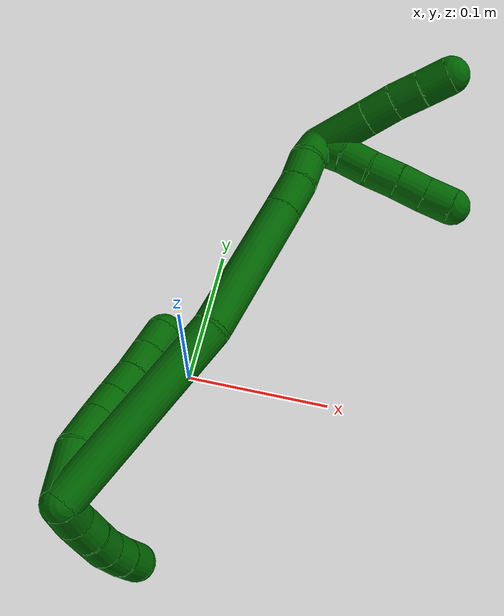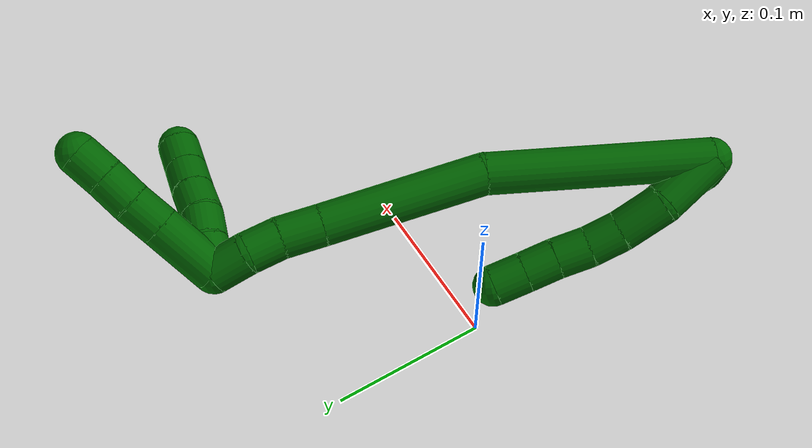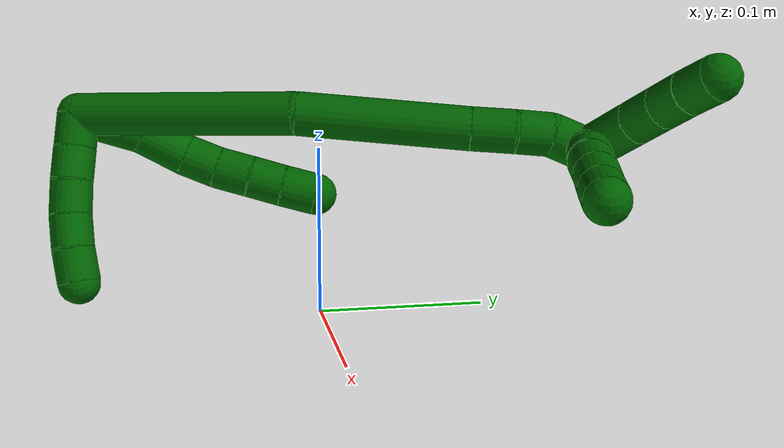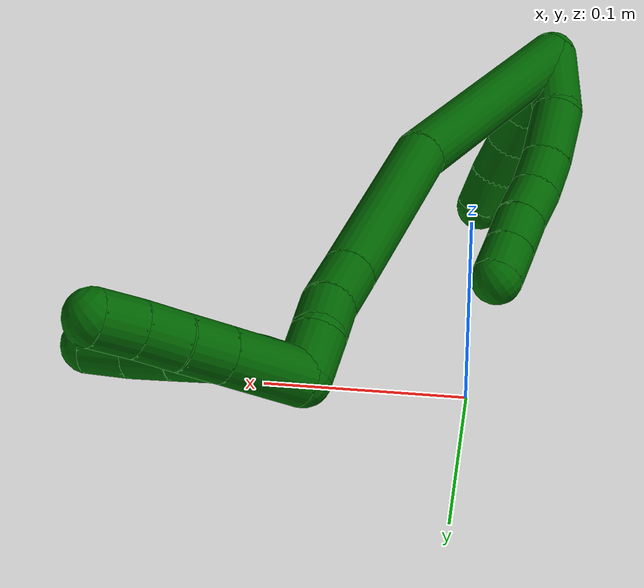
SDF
<sdf version="1.7">
 <world name="default">
  <model name="6">
   <static>0</static>
   <link name="6">
    <collision name="collision-cylinder-e_1_2_8">
     <pose>-0.00173 0.017191 -0.008407 -2.02565 -0.090167 0.144316</pose>
     <geometry><cylinder><radius>0.0125</radius><length>0.03843</length></cylinder></geometry>
     <surface>
      <friction><ode><mu>1.16</mu><mu2>1.16</mu2><slip1>0</slip1><slip2>0</slip2></ode></friction>
      <contact><ode><kp>1e+06</kp><kd>1</kd><max_vel>0</max_vel><min_depth>0.001</min_depth></ode></contact>
     </surface>
    </collision>
    <visual name="visual-cylinder-e_1_2_8">
     <pose>-0.00173 0.017191 -0.008407 -2.02565 -0.090167 0.144316</pose>
     <geometry><cylinder><radius>0.0125</radius><length>0.03843</length></cylinder></geometry>
     <material><ambient>0 0.392157 0.003922 1</ambient></material>
    </visual>
    <collision name="collision-cylinder-e_2_8_9">
     <pose>-0.000395 0.047733 -0.022591 -1.97915 0.207699 -0.314693</pose>
     <geometry><cylinder><radius>0.0125</radius><length>0.029731</length></cylinder></geometry>
     <surface>
      <friction><ode><mu>1.16</mu><mu2>1.16</mu2><slip1>0</slip1><slip2>0</slip2></ode></friction>
      <contact><ode><kp>1e+06</kp><kd>1</kd><max_vel>0</max_vel><min_depth>0.001</min_depth></ode></contact>
     </surface>
    </collision>
    <visual name="visual-cylinder-e_2_8_9">
     <pose>-0.000395 0.047733 -0.022591 -1.97915 0.207699 -0.314693</pose>
     <geometry><cylinder><radius>0.0125</radius><length>0.029731</length></cylinder></geometry>
     <material><ambient>0 0.392157 0.003922 1</ambient></material>
    </visual>
    <collision name="collision-cylinder-e_3_9_10">
     <pose>0.004696 0.070839 -0.031075 -1.84155 0.197491 -0.259162</pose>
     <geometry><cylinder><radius>0.0125</radius><length>0.020651</length></cylinder></geometry>
     <surface>
      <friction><ode><mu>1.16</mu><mu2>1.16</mu2><slip1>0</slip1><slip2>0</slip2></ode></friction>
      <contact><ode><kp>1e+06</kp><kd>1</kd><max_vel>0</max_vel><min_depth>0.001</min_depth></ode></contact>
     </surface>
    </collision>
    <visual name="visual-cylinder-e_3_9_10">
     <pose>0.004696 0.070839 -0.031075 -1.84155 0.197491 -0.259162</pose>
     <geometry><cylinder><radius>0.0125</radius><length>0.020651</length></cylinder></geometry>
     <material><ambient>0 0.392157 0.003922 1</ambient></material>
    </visual>
    <collision name="collision-cylinder-e_4_10_11">
     <pose>0.008503 0.090727 -0.035064 -1.69655 0.172621 -0.19568</pose>
     <geometry><cylinder><radius>0.0125</radius><length>0.020734</length></cylinder></geometry>
     <surface>
      <friction><ode><mu>1.16</mu><mu2>1.16</mu2><slip1>0</slip1><slip2>0</slip2></ode></friction>
      <contact><ode><kp>1e+06</kp><kd>1</kd><max_vel>0</max_vel><min_depth>0.001</min_depth></ode></contact>
     </surface>
    </collision>
    <visual name="visual-cylinder-e_4_10_11">
     <pose>0.008503 0.090727 -0.035064 -1.69655 0.172621 -0.19568</pose>
     <geometry><cylinder><radius>0.0125</radius><length>0.020734</length></cylinder></geometry>
     <material><ambient>0 0.392157 0.003922 1</ambient></material>
    </visual>
    <collision name="collision-cylinder-e_5_11_12">
     <pose>0.011626 0.110636 -0.038203 -1.75859 0.134019 -0.161775</pose>
     <geometry><cylinder><radius>0.0125</radius><length>0.020084</length></cylinder></geometry>
     <surface>
      <friction><ode><mu>1.16</mu><mu2>1.16</mu2><slip1>0</slip1><slip2>0</slip2></ode></friction>
      <contact><ode><kp>1e+06</kp><kd>1</kd><max_vel>0</max_vel><min_depth>0.001</min_depth></ode></contact>
     </surface>
    </collision>
    <visual name="visual-cylinder-e_5_11_12">
     <pose>0.011626 0.110636 -0.038203 -1.75859 0.134019 -0.161775</pose>
     <geometry><cylinder><radius>0.0125</radius><length>0.020084</length></cylinder></geometry>
     <material><ambient>0 0.392157 0.003922 1</ambient></material>
    </visual>
    <collision name="collision-cylinder-e_6_12_6">
     <pose>0.014207 0.130384 -0.041727 -1.73633 0.121992 -0.143993</pose>
     <geometry><cylinder><radius>0.0125</radius><length>0.020369</length></cylinder></geometry>
     <surface>
      <friction><ode><mu>1.16</mu><mu2>1.16</mu2><slip1>0</slip1><slip2>0</slip2></ode></friction>
      <contact><ode><kp>1e+06</kp><kd>1</kd><max_vel>0</max_vel><min_depth>0.001</min_depth></ode></contact>
     </surface>
    </collision>
    <visual name="visual-cylinder-e_6_12_6">
     <pose>0.014207 0.130384 -0.041727 -1.73633 0.121992 -0.143993</pose>
     <geometry><cylinder><radius>0.0125</radius><length>0.020369</length></cylinder></geometry>
     <material><ambient>0 0.392157 0.003922 1</ambient></material>
    </visual>
    <collision name="collision-cylinder-e_1_2_13">
     <pose>0.008077 -0.000397 -0.005883 3.07419 0.940161 3.00908</pose>
     <geometry><cylinder><radius>0.0125</radius><length>0.02</length></cylinder></geometry>
     <surface>
      <friction><ode><mu>1.16</mu><mu2>1.16</mu2><slip1>0</slip1><slip2>0</slip2></ode></friction>
      <contact><ode><kp>1e+06</kp><kd>1</kd><max_vel>0</max_vel><min_depth>0.001</min_depth></ode></contact>
     </surface>
    </collision>
    <visual name="visual-cylinder-e_1_2_13">
     <pose>0.008077 -0.000397 -0.005883 3.07419 0.940161 3.00908</pose>
     <geometry><cylinder><radius>0.0125</radius><length>0.02</length></cylinder></geometry>
     <material><ambient>0 0.392157 0.003922 1</ambient></material>
    </visual>
    <collision name="collision-cylinder-e_2_13_14">
     <pose>0.024998 -0.000702 -0.016431 -3.1219 1.08536 -3.10893</pose>
     <geometry><cylinder><radius>0.0125</radius><length>0.02</length></cylinder></geometry>
     <surface>
      <friction><ode><mu>1.16</mu><mu2>1.16</mu2><slip1>0</slip1><slip2>0</slip2></ode></friction>
      <contact><ode><kp>1e+06</kp><kd>1</kd><max_vel>0</max_vel><min_depth>0.001</min_depth></ode></contact>
     </surface>
    </collision>
    <visual name="visual-cylinder-e_2_13_14">
     <pose>0.024998 -0.000702 -0.016431 -3.1219 1.08536 -3.10893</pose>
     <geometry><cylinder><radius>0.0125</radius><length>0.02</length></cylinder></geometry>
     <material><ambient>0 0.392157 0.003922 1</ambient></material>
    </visual>
    <collision name="collision-cylinder-e_3_14_15">
     <pose>0.042167 -0.000138 -0.026617 -3.05614 0.983512 -2.9823</pose>
     <geometry><cylinder><radius>0.0125</radius><length>0.02</length></cylinder></geometry>
     <surface>
      <friction><ode><mu>1.16</mu><mu2>1.16</mu2><slip1>0</slip1><slip2>0</slip2></ode></friction>
      <contact><ode><kp>1e+06</kp><kd>1</kd><max_vel>0</max_vel><min_depth>0.001</min_depth></ode></contact>
     </surface>
    </collision>
    <visual name="visual-cylinder-e_3_14_15">
     <pose>0.042167 -0.000138 -0.026617 -3.05614 0.983512 -2.9823</pose>
     <geometry><cylinder><radius>0.0125</radius><length>0.02</length></cylinder></geometry>
     <material><ambient>0 0.392157 0.003922 1</ambient></material>
    </visual>
    <collision name="collision-cylinder-e_4_15_16">
     <pose>0.059009 0.002043 -0.037091 -2.80968 1.01938 -2.5593</pose>
     <geometry><cylinder><radius>0.0125</radius><length>0.02</length></cylinder></geometry>
     <surface>
      <friction><ode><mu>1.16</mu><mu2>1.16</mu2><slip1>0</slip1><slip2>0</slip2></ode></friction>
      <contact><ode><kp>1e+06</kp><kd>1</kd><max_vel>0</max_vel><min_depth>0.001</min_depth></ode></contact>
     </surface>
    </collision>
    <visual name="visual-cylinder-e_4_15_16">
     <pose>0.059009 0.002043 -0.037091 -2.80968 1.01938 -2.5593</pose>
     <geometry><cylinder><radius>0.0125</radius><length>0.02</length></cylinder></geometry>
     <material><ambient>0 0.392157 0.003922 1</ambient></material>
    </visual>
    <collision name="collision-cylinder-e_5_16_5">
     <pose>0.075467 0.006225 -0.047597 -2.72223 0.917299 -2.32773</pose>
     <geometry><cylinder><radius>0.0125</radius><length>0.02</length></cylinder></geometry>
     <surface>
      <friction><ode><mu>1.16</mu><mu2>1.16</mu2><slip1>0</slip1><slip2>0</slip2></ode></friction>
      <contact><ode><kp>1e+06</kp><kd>1</kd><max_vel>0</max_vel><min_depth>0.001</min_depth></ode></contact>
     </surface>
    </collision>
    <visual name="visual-cylinder-e_5_16_5">
     <pose>0.075467 0.006225 -0.047597 -2.72223 0.917299 -2.32773</pose>
     <geometry><cylinder><radius>0.0125</radius><length>0.02</length></cylinder></geometry>
     <material><ambient>0 0.392157 0.003922 1</ambient></material>
    </visual>
    <collision name="collision-cylinder-e_1_2_17">
     <pose>0.007562 0.065737 0.012794 -1.37858 0.112432 -0.092691</pose>
     <geometry><cylinder><radius>0.0125</radius><length>0.134793</length></cylinder></geometry>
     <surface>
      <friction><ode><mu>1.16</mu><mu2>1.16</mu2><slip1>0</slip1><slip2>0</slip2></ode></friction>
      <contact><ode><kp>1e+06</kp><kd>1</kd><max_vel>0</max_vel><min_depth>0.001</min_depth></ode></contact>
     </surface>
    </collision>
    <visual name="visual-cylinder-e_1_2_17">
     <pose>0.007562 0.065737 0.012794 -1.37858 0.112432 -0.092691</pose>
     <geometry><cylinder><radius>0.0125</radius><length>0.134793</length></cylinder></geometry>
     <material><ambient>0 0.392157 0.003922 1</ambient></material>
    </visual>
    <collision name="collision-cylinder-e_2_17_18">
     <pose>0.016355 0.180411 0.024217 -1.5988 0.025168 -0.025883</pose>
     <geometry><cylinder><radius>0.0125</radius><length>0.097941</length></cylinder></geometry>
     <surface>
      <friction><ode><mu>1.16</mu><mu2>1.16</mu2><slip1>0</slip1><slip2>0</slip2></ode></friction>
      <contact><ode><kp>1e+06</kp><kd>1</kd><max_vel>0</max_vel><min_depth>0.001</min_depth></ode></contact>
     </surface>
    </collision>
    <visual name="visual-cylinder-e_2_17_18">
     <pose>0.016355 0.180411 0.024217 -1.5988 0.025168 -0.025883</pose>
     <geometry><cylinder><radius>0.0125</radius><length>0.097941</length></cylinder></geometry>
     <material><ambient>0 0.392157 0.003922 1</ambient></material>
    </visual>
    <collision name="collision-cylinder-e_3_18_19">
     <pose>0.017699 0.241767 0.02269 -1.58332 0.008981 -0.009094</pose>
     <geometry><cylinder><radius>0.0125</radius><length>0.024844</length></cylinder></geometry>
     <surface>
      <friction><ode><mu>1.16</mu><mu2>1.16</mu2><slip1>0</slip1><slip2>0</slip2></ode></friction>
      <contact><ode><kp>1e+06</kp><kd>1</kd><max_vel>0</max_vel><min_depth>0.001</min_depth></ode></contact>
     </surface>
    </collision>
    <visual name="visual-cylinder-e_3_18_19">
     <pose>0.017699 0.241767 0.02269 -1.58332 0.008981 -0.009094</pose>
     <geometry><cylinder><radius>0.0125</radius><length>0.024844</length></cylinder></geometry>
     <material><ambient>0 0.392157 0.003922 1</ambient></material>
    </visual>
    <collision name="collision-cylinder-e_4_19_20">
     <pose>0.016994 0.264203 0.021202 -1.70307 -0.080663 0.09209</pose>
     <geometry><cylinder><radius>0.0125</radius><length>0.020273</length></cylinder></geometry>
     <surface>
      <friction><ode><mu>1.16</mu><mu2>1.16</mu2><slip1>0</slip1><slip2>0</slip2></ode></friction>
      <contact><ode><kp>1e+06</kp><kd>1</kd><max_vel>0</max_vel><min_depth>0.001</min_depth></ode></contact>
     </surface>
    </collision>
    <visual name="visual-cylinder-e_4_19_20">
     <pose>0.016994 0.264203 0.021202 -1.70307 -0.080663 0.09209</pose>
     <geometry><cylinder><radius>0.0125</radius><length>0.020273</length></cylinder></geometry>
     <material><ambient>0 0.392157 0.003922 1</ambient></material>
    </visual>
    <collision name="collision-cylinder-e_5_20_1">
     <pose>0.018263 0.284568 0.016526 -1.88328 0.189479 -0.259649</pose>
     <geometry><cylinder><radius>0.0125</radius><length>0.022149</length></cylinder></geometry>
     <surface>
      <friction><ode><mu>1.16</mu><mu2>1.16</mu2><slip1>0</slip1><slip2>0</slip2></ode></friction>
      <contact><ode><kp>1e+06</kp><kd>1</kd><max_vel>0</max_vel><min_depth>0.001</min_depth></ode></contact>
     </surface>
    </collision>
    <visual name="visual-cylinder-e_5_20_1">
     <pose>0.018263 0.284568 0.016526 -1.88328 0.189479 -0.259649</pose>
     <geometry><cylinder><radius>0.0125</radius><length>0.022149</length></cylinder></geometry>
     <material><ambient>0 0.392157 0.003922 1</ambient></material>
    </visual>
    <collision name="collision-cylinder-e_1_1_21">
     <pose>0.027645 0.294463 0.020006 0.066486 0.817754 0.028817</pose>
     <geometry><cylinder><radius>0.0125</radius><length>0.02</length></cylinder></geometry>
     <surface>
      <friction><ode><mu>1.16</mu><mu2>1.16</mu2><slip1>0</slip1><slip2>0</slip2></ode></friction>
      <contact><ode><kp>1e+06</kp><kd>1</kd><max_vel>0</max_vel><min_depth>0.001</min_depth></ode></contact>
     </surface>
    </collision>
    <visual name="visual-cylinder-e_1_1_21">
     <pose>0.027645 0.294463 0.020006 0.066486 0.817754 0.028817</pose>
     <geometry><cylinder><radius>0.0125</radius><length>0.02</length></cylinder></geometry>
     <material><ambient>0 0.392157 0.003922 1</ambient></material>
    </visual>
    <collision name="collision-cylinder-e_2_21_22">
     <pose>0.043092 0.293115 0.032553 0.15498 0.9529 0.080104</pose>
     <geometry><cylinder><radius>0.0125</radius><length>0.02</length></cylinder></geometry>
     <surface>
      <friction><ode><mu>1.16</mu><mu2>1.16</mu2><slip1>0</slip1><slip2>0</slip2></ode></friction>
      <contact><ode><kp>1e+06</kp><kd>1</kd><max_vel>0</max_vel><min_depth>0.001</min_depth></ode></contact>
     </surface>
    </collision>
    <visual name="visual-cylinder-e_2_21_22">
     <pose>0.043092 0.293115 0.032553 0.15498 0.9529 0.080104</pose>
     <geometry><cylinder><radius>0.0125</radius><length>0.02</length></cylinder></geometry>
     <material><ambient>0 0.392157 0.003922 1</ambient></material>
    </visual>
    <collision name="collision-cylinder-e_3_22_23">
     <pose>0.059964 0.29279 0.043138 -0.116729 1.05941 -0.068399</pose>
     <geometry><cylinder><radius>0.0125</radius><length>0.02</length></cylinder></geometry>
     <surface>
      <friction><ode><mu>1.16</mu><mu2>1.16</mu2><slip1>0</slip1><slip2>0</slip2></ode></friction>
      <contact><ode><kp>1e+06</kp><kd>1</kd><max_vel>0</max_vel><min_depth>0.001</min_depth></ode></contact>
     </surface>
    </collision>
    <visual name="visual-cylinder-e_3_22_23">
     <pose>0.059964 0.29279 0.043138 -0.116729 1.05941 -0.068399</pose>
     <geometry><cylinder><radius>0.0125</radius><length>0.02</length></cylinder></geometry>
     <material><ambient>0 0.392157 0.003922 1</ambient></material>
    </visual>
    <collision name="collision-cylinder-e_4_23_24">
     <pose>0.077529 0.293491 0.052662 -0.028097 1.08539 -0.016946</pose>
     <geometry><cylinder><radius>0.0125</radius><length>0.02</length></cylinder></geometry>
     <surface>
      <friction><ode><mu>1.16</mu><mu2>1.16</mu2><slip1>0</slip1><slip2>0</slip2></ode></friction>
      <contact><ode><kp>1e+06</kp><kd>1</kd><max_vel>0</max_vel><min_depth>0.001</min_depth></ode></contact>
     </surface>
    </collision>
    <visual name="visual-cylinder-e_4_23_24">
     <pose>0.077529 0.293491 0.052662 -0.028097 1.08539 -0.016946</pose>
     <geometry><cylinder><radius>0.0125</radius><length>0.02</length></cylinder></geometry>
     <material><ambient>0 0.392157 0.003922 1</ambient></material>
    </visual>
    <collision name="collision-cylinder-e_5_24_4">
     <pose>0.094844 0.293776 0.06264 -0.028867 1.01029 -0.015964</pose>
     <geometry><cylinder><radius>0.0125</radius><length>0.02</length></cylinder></geometry>
     <surface>
      <friction><ode><mu>1.16</mu><mu2>1.16</mu2><slip1>0</slip1><slip2>0</slip2></ode></friction>
      <contact><ode><kp>1e+06</kp><kd>1</kd><max_vel>0</max_vel><min_depth>0.001</min_depth></ode></contact>
     </surface>
    </collision>
    <visual name="visual-cylinder-e_5_24_4">
     <pose>0.094844 0.293776 0.06264 -0.028867 1.01029 -0.015964</pose>
     <geometry><cylinder><radius>0.0125</radius><length>0.02</length></cylinder></geometry>
     <material><ambient>0 0.392157 0.003922 1</ambient></material>
    </visual>
    <collision name="collision-cylinder-e_1_1_25">
     <pose>0.024272 0.305576 0.029314 -0.583868 0.200163 -0.060336</pose>
     <geometry><cylinder><radius>0.0125</radius><length>0.039456</length></cylinder></geometry>
     <surface>
      <friction><ode><mu>1.16</mu><mu2>1.16</mu2><slip1>0</slip1><slip2>0</slip2></ode></friction>
      <contact><ode><kp>1e+06</kp><kd>1</kd><max_vel>0</max_vel><min_depth>0.001</min_depth></ode></contact>
     </surface>
    </collision>
    <visual name="visual-cylinder-e_1_1_25">
     <pose>0.024272 0.305576 0.029314 -0.583868 0.200163 -0.060336</pose>
     <geometry><cylinder><radius>0.0125</radius><length>0.039456</length></cylinder></geometry>
     <material><ambient>0 0.392157 0.003922 1</ambient></material>
    </visual>
    <collision name="collision-cylinder-e_2_25_26">
     <pose>0.030203 0.321847 0.053807 -0.591173 0.196894 -0.060132</pose>
     <geometry><cylinder><radius>0.0125</radius><length>0.020541</length></cylinder></geometry>
     <surface>
      <friction><ode><mu>1.16</mu><mu2>1.16</mu2><slip1>0</slip1><slip2>0</slip2></ode></friction>
      <contact><ode><kp>1e+06</kp><kd>1</kd><max_vel>0</max_vel><min_depth>0.001</min_depth></ode></contact>
     </surface>
    </collision>
    <visual name="visual-cylinder-e_2_25_26">
     <pose>0.030203 0.321847 0.053807 -0.591173 0.196894 -0.060132</pose>
     <geometry><cylinder><radius>0.0125</radius><length>0.020541</length></cylinder></geometry>
     <material><ambient>0 0.392157 0.003922 1</ambient></material>
    </visual>
    <collision name="collision-cylinder-e_3_26_27">
     <pose>0.034793 0.332403 0.070473 -0.536945 0.260971 -0.072176</pose>
     <geometry><cylinder><radius>0.0125</radius><length>0.020003</length></cylinder></geometry>
     <surface>
      <friction><ode><mu>1.16</mu><mu2>1.16</mu2><slip1>0</slip1><slip2>0</slip2></ode></friction>
      <contact><ode><kp>1e+06</kp><kd>1</kd><max_vel>0</max_vel><min_depth>0.001</min_depth></ode></contact>
     </surface>
    </collision>
    <visual name="visual-cylinder-e_3_26_27">
     <pose>0.034793 0.332403 0.070473 -0.536945 0.260971 -0.072176</pose>
     <geometry><cylinder><radius>0.0125</radius><length>0.020003</length></cylinder></geometry>
     <material><ambient>0 0.392157 0.003922 1</ambient></material>
    </visual>
    <collision name="collision-cylinder-e_4_27_3">
     <pose>0.039992 0.342655 0.086835 -0.582508 0.264994 -0.079865</pose>
     <geometry><cylinder><radius>0.0125</radius><length>0.02</length></cylinder></geometry>
     <surface>
      <friction><ode><mu>1.16</mu><mu2>1.16</mu2><slip1>0</slip1><slip2>0</slip2></ode></friction>
      <contact><ode><kp>1e+06</kp><kd>1</kd><max_vel>0</max_vel><min_depth>0.001</min_depth></ode></contact>
     </surface>
    </collision>
    <visual name="visual-cylinder-e_4_27_3">
     <pose>0.039992 0.342655 0.086835 -0.582508 0.264994 -0.079865</pose>
     <geometry><cylinder><radius>0.0125</radius><length>0.02</length></cylinder></geometry>
     <material><ambient>0 0.392157 0.003922 1</ambient></material>
    </visual>
    <collision name="collision-sphere-3">
     <pose>0.042612 0.347964 0.094895 0 -0 0</pose>
     <geometry><sphere><radius>0.0125</radius></sphere></geometry>
     <surface>
      <friction><ode><mu>1.16</mu><mu2>1.16</mu2><slip1>0</slip1><slip2>0</slip2></ode></friction>
      <contact><ode><kp>1e+06</kp><kd>1</kd><max_vel>0</max_vel><min_depth>0.001</min_depth></ode></contact>
     </surface>
    </collision>
    <visual name="visual-sphere-3">
     <pose>0.042612 0.347964 0.094895 0 -0 0</pose>
     <geometry><sphere><radius>0.0125</radius></sphere></geometry>
     <material><ambient>0 0.392157 0.003922 1</ambient></material>
    </visual>
    <collision name="collision-sphere-27">
     <pose>0.037373 0.337346 0.078776 0 -0 0</pose>
     <geometry><sphere><radius>0.0125</radius></sphere></geometry>
     <surface>
      <friction><ode><mu>1.16</mu><mu2>1.16</mu2><slip1>0</slip1><slip2>0</slip2></ode></friction>
      <contact><ode><kp>1e+06</kp><kd>1</kd><max_vel>0</max_vel><min_depth>0.001</min_depth></ode></contact>
     </surface>
    </collision>
    <visual name="visual-sphere-27">
     <pose>0.037373 0.337346 0.078776 0 -0 0</pose>
     <geometry><sphere><radius>0.0125</radius></sphere></geometry>
     <material><ambient>0 0.392157 0.003922 1</ambient></material>
    </visual>
    <collision name="collision-sphere-26">
     <pose>0.032212 0.327461 0.06217 0 -0 0</pose>
     <geometry><sphere><radius>0.0125</radius></sphere></geometry>
     <surface>
      <friction><ode><mu>1.16</mu><mu2>1.16</mu2><slip1>0</slip1><slip2>0</slip2></ode></friction>
      <contact><ode><kp>1e+06</kp><kd>1</kd><max_vel>0</max_vel><min_depth>0.001</min_depth></ode></contact>
     </surface>
    </collision>
    <visual name="visual-sphere-26">
     <pose>0.032212 0.327461 0.06217 0 -0 0</pose>
     <geometry><sphere><radius>0.0125</radius></sphere></geometry>
     <material><ambient>0 0.392157 0.003922 1</ambient></material>
    </visual>
    <collision name="collision-sphere-25">
     <pose>0.028194 0.316234 0.045445 0 -0 0</pose>
     <geometry><sphere><radius>0.0125</radius></sphere></geometry>
     <surface>
      <friction><ode><mu>1.16</mu><mu2>1.16</mu2><slip1>0</slip1><slip2>0</slip2></ode></friction>
      <contact><ode><kp>1e+06</kp><kd>1</kd><max_vel>0</max_vel><min_depth>0.001</min_depth></ode></contact>
     </surface>
    </collision>
    <visual name="visual-sphere-25">
     <pose>0.028194 0.316234 0.045445 0 -0 0</pose>
     <geometry><sphere><radius>0.0125</radius></sphere></geometry>
     <material><ambient>0 0.392157 0.003922 1</ambient></material>
    </visual>
    <collision name="collision-sphere-4">
     <pose>0.103314 0.293929 0.067954 0 -0 0</pose>
     <geometry><sphere><radius>0.0125</radius></sphere></geometry>
     <surface>
      <friction><ode><mu>1.16</mu><mu2>1.16</mu2><slip1>0</slip1><slip2>0</slip2></ode></friction>
      <contact><ode><kp>1e+06</kp><kd>1</kd><max_vel>0</max_vel><min_depth>0.001</min_depth></ode></contact>
     </surface>
    </collision>
    <visual name="visual-sphere-4">
     <pose>0.103314 0.293929 0.067954 0 -0 0</pose>
     <geometry><sphere><radius>0.0125</radius></sphere></geometry>
     <material><ambient>0 0.392157 0.003922 1</ambient></material>
    </visual>
    <collision name="collision-sphere-24">
     <pose>0.086374 0.293622 0.057326 0 -0 0</pose>
     <geometry><sphere><radius>0.0125</radius></sphere></geometry>
     <surface>
      <friction><ode><mu>1.16</mu><mu2>1.16</mu2><slip1>0</slip1><slip2>0</slip2></ode></friction>
      <contact><ode><kp>1e+06</kp><kd>1</kd><max_vel>0</max_vel><min_depth>0.001</min_depth></ode></contact>
     </surface>
    </collision>
    <visual name="visual-sphere-24">
     <pose>0.086374 0.293622 0.057326 0 -0 0</pose>
     <geometry><sphere><radius>0.0125</radius></sphere></geometry>
     <material><ambient>0 0.392157 0.003922 1</ambient></material>
    </visual>
    <collision name="collision-sphere-23">
     <pose>0.068685 0.29336 0.047998 0 -0 0</pose>
     <geometry><sphere><radius>0.0125</radius></sphere></geometry>
     <surface>
      <friction><ode><mu>1.16</mu><mu2>1.16</mu2><slip1>0</slip1><slip2>0</slip2></ode></friction>
      <contact><ode><kp>1e+06</kp><kd>1</kd><max_vel>0</max_vel><min_depth>0.001</min_depth></ode></contact>
     </surface>
    </collision>
    <visual name="visual-sphere-23">
     <pose>0.068685 0.29336 0.047998 0 -0 0</pose>
     <geometry><sphere><radius>0.0125</radius></sphere></geometry>
     <material><ambient>0 0.392157 0.003922 1</ambient></material>
    </visual>
    <collision name="collision-sphere-22">
     <pose>0.051243 0.29222 0.038277 0 -0 0</pose>
     <geometry><sphere><radius>0.0125</radius></sphere></geometry>
     <surface>
      <friction><ode><mu>1.16</mu><mu2>1.16</mu2><slip1>0</slip1><slip2>0</slip2></ode></friction>
      <contact><ode><kp>1e+06</kp><kd>1</kd><max_vel>0</max_vel><min_depth>0.001</min_depth></ode></contact>
     </surface>
    </collision>
    <visual name="visual-sphere-22">
     <pose>0.051243 0.29222 0.038277 0 -0 0</pose>
     <geometry><sphere><radius>0.0125</radius></sphere></geometry>
     <material><ambient>0 0.392157 0.003922 1</ambient></material>
    </visual>
    <collision name="collision-sphere-21">
     <pose>0.034941 0.294009 0.026829 0 -0 0</pose>
     <geometry><sphere><radius>0.0125</radius></sphere></geometry>
     <surface>
      <friction><ode><mu>1.16</mu><mu2>1.16</mu2><slip1>0</slip1><slip2>0</slip2></ode></friction>
      <contact><ode><kp>1e+06</kp><kd>1</kd><max_vel>0</max_vel><min_depth>0.001</min_depth></ode></contact>
     </surface>
    </collision>
    <visual name="visual-sphere-21">
     <pose>0.034941 0.294009 0.026829 0 -0 0</pose>
     <geometry><sphere><radius>0.0125</radius></sphere></geometry>
     <material><ambient>0 0.392157 0.003922 1</ambient></material>
    </visual>
    <collision name="collision-sphere-1">
     <pose>0.020349 0.294918 0.013182 0 -0 0</pose>
     <geometry><sphere><radius>0.0125</radius></sphere></geometry>
     <surface>
      <friction><ode><mu>1.16</mu><mu2>1.16</mu2><slip1>0</slip1><slip2>0</slip2></ode></friction>
      <contact><ode><kp>1e+06</kp><kd>1</kd><max_vel>0</max_vel><min_depth>0.001</min_depth></ode></contact>
     </surface>
    </collision>
    <visual name="visual-sphere-1">
     <pose>0.020349 0.294918 0.013182 0 -0 0</pose>
     <geometry><sphere><radius>0.0125</radius></sphere></geometry>
     <material><ambient>0 0.392157 0.003922 1</ambient></material>
    </visual>
    <collision name="collision-sphere-12">
     <pose>0.012967 0.120413 -0.040061 0 -0 0</pose>
     <geometry><sphere><radius>0.0125</radius></sphere></geometry>
     <surface>
      <friction><ode><mu>1.16</mu><mu2>1.16</mu2><slip1>0</slip1><slip2>0</slip2></ode></friction>
      <contact><ode><kp>1e+06</kp><kd>1</kd><max_vel>0</max_vel><min_depth>0.001</min_depth></ode></contact>
     </surface>
    </collision>
    <visual name="visual-sphere-12">
     <pose>0.012967 0.120413 -0.040061 0 -0 0</pose>
     <geometry><sphere><radius>0.0125</radius></sphere></geometry>
     <material><ambient>0 0.392157 0.003922 1</ambient></material>
    </visual>
    <collision name="collision-sphere-11">
     <pose>0.010284 0.100859 -0.036345 0 -0 0</pose>
     <geometry><sphere><radius>0.0125</radius></sphere></geometry>
     <surface>
      <friction><ode><mu>1.16</mu><mu2>1.16</mu2><slip1>0</slip1><slip2>0</slip2></ode></friction>
      <contact><ode><kp>1e+06</kp><kd>1</kd><max_vel>0</max_vel><min_depth>0.001</min_depth></ode></contact>
     </surface>
    </collision>
    <visual name="visual-sphere-11">
     <pose>0.010284 0.100859 -0.036345 0 -0 0</pose>
     <geometry><sphere><radius>0.0125</radius></sphere></geometry>
     <material><ambient>0 0.392157 0.003922 1</ambient></material>
    </visual>
    <collision name="collision-sphere-10">
     <pose>0.006722 0.080594 -0.033783 0 -0 0</pose>
     <geometry><sphere><radius>0.0125</radius></sphere></geometry>
     <surface>
      <friction><ode><mu>1.16</mu><mu2>1.16</mu2><slip1>0</slip1><slip2>0</slip2></ode></friction>
      <contact><ode><kp>1e+06</kp><kd>1</kd><max_vel>0</max_vel><min_depth>0.001</min_depth></ode></contact>
     </surface>
    </collision>
    <visual name="visual-sphere-10">
     <pose>0.006722 0.080594 -0.033783 0 -0 0</pose>
     <geometry><sphere><radius>0.0125</radius></sphere></geometry>
     <material><ambient>0 0.392157 0.003922 1</ambient></material>
    </visual>
    <collision name="collision-sphere-9">
     <pose>0.00267 0.061083 -0.028367 0 -0 0</pose>
     <geometry><sphere><radius>0.0125</radius></sphere></geometry>
     <surface>
      <friction><ode><mu>1.16</mu><mu2>1.16</mu2><slip1>0</slip1><slip2>0</slip2></ode></friction>
      <contact><ode><kp>1e+06</kp><kd>1</kd><max_vel>0</max_vel><min_depth>0.001</min_depth></ode></contact>
     </surface>
    </collision>
    <visual name="visual-sphere-9">
     <pose>0.00267 0.061083 -0.028367 0 -0 0</pose>
     <geometry><sphere><radius>0.0125</radius></sphere></geometry>
     <material><ambient>0 0.392157 0.003922 1</ambient></material>
    </visual>
    <collision name="collision-sphere-2">
     <geometry><sphere><radius>0.0125</radius></sphere></geometry>
     <surface>
      <friction><ode><mu>1.16</mu><mu2>1.16</mu2><slip1>0</slip1><slip2>0</slip2></ode></friction>
      <contact><ode><kp>1e+06</kp><kd>1</kd><max_vel>0</max_vel><min_depth>0.001</min_depth></ode></contact>
     </surface>
    </collision>
    <visual name="visual-sphere-2">
     <geometry><sphere><radius>0.0125</radius></sphere></geometry>
     <material><ambient>0 0.392157 0.003922 1</ambient></material>
    </visual>
    <collision name="collision-sphere-19">
     <pose>0.017811 0.254188 0.022535 0 -0 0</pose>
     <geometry><sphere><radius>0.0125</radius></sphere></geometry>
     <surface>
      <friction><ode><mu>1.16</mu><mu2>1.16</mu2><slip1>0</slip1><slip2>0</slip2></ode></friction>
      <contact><ode><kp>1e+06</kp><kd>1</kd><max_vel>0</max_vel><min_depth>0.001</min_depth></ode></contact>
     </surface>
    </collision>
    <visual name="visual-sphere-19">
     <pose>0.017811 0.254188 0.022535 0 -0 0</pose>
     <geometry><sphere><radius>0.0125</radius></sphere></geometry>
     <material><ambient>0 0.392157 0.003922 1</ambient></material>
    </visual>
    <collision name="collision-sphere-8">
     <pose>-0.00346 0.034383 -0.016815 0 -0 0</pose>
     <geometry><sphere><radius>0.0125</radius></sphere></geometry>
     <surface>
      <friction><ode><mu>1.16</mu><mu2>1.16</mu2><slip1>0</slip1><slip2>0</slip2></ode></friction>
      <contact><ode><kp>1e+06</kp><kd>1</kd><max_vel>0</max_vel><min_depth>0.001</min_depth></ode></contact>
     </surface>
    </collision>
    <visual name="visual-sphere-8">
     <pose>-0.00346 0.034383 -0.016815 0 -0 0</pose>
     <geometry><sphere><radius>0.0125</radius></sphere></geometry>
     <material><ambient>0 0.392157 0.003922 1</ambient></material>
    </visual>
    <collision name="collision-sphere-6">
     <pose>0.015446 0.140355 -0.043393 0 -0 0</pose>
     <geometry><sphere><radius>0.0125</radius></sphere></geometry>
     <surface>
      <friction><ode><mu>1.16</mu><mu2>1.16</mu2><slip1>0</slip1><slip2>0</slip2></ode></friction>
      <contact><ode><kp>1e+06</kp><kd>1</kd><max_vel>0</max_vel><min_depth>0.001</min_depth></ode></contact>
     </surface>
    </collision>
    <visual name="visual-sphere-6">
     <pose>0.015446 0.140355 -0.043393 0 -0 0</pose>
     <geometry><sphere><radius>0.0125</radius></sphere></geometry>
     <material><ambient>0 0.392157 0.003922 1</ambient></material>
    </visual>
    <collision name="collision-sphere-13">
     <pose>0.016153 -0.000794 -0.011766 0 -0 0</pose>
     <geometry><sphere><radius>0.0125</radius></sphere></geometry>
     <surface>
      <friction><ode><mu>1.16</mu><mu2>1.16</mu2><slip1>0</slip1><slip2>0</slip2></ode></friction>
      <contact><ode><kp>1e+06</kp><kd>1</kd><max_vel>0</max_vel><min_depth>0.001</min_depth></ode></contact>
     </surface>
    </collision>
    <visual name="visual-sphere-13">
     <pose>0.016153 -0.000794 -0.011766 0 -0 0</pose>
     <geometry><sphere><radius>0.0125</radius></sphere></geometry>
     <material><ambient>0 0.392157 0.003922 1</ambient></material>
    </visual>
    <collision name="collision-sphere-14">
     <pose>0.033842 -0.00061 -0.021096 0 -0 0</pose>
     <geometry><sphere><radius>0.0125</radius></sphere></geometry>
     <surface>
      <friction><ode><mu>1.16</mu><mu2>1.16</mu2><slip1>0</slip1><slip2>0</slip2></ode></friction>
      <contact><ode><kp>1e+06</kp><kd>1</kd><max_vel>0</max_vel><min_depth>0.001</min_depth></ode></contact>
     </surface>
    </collision>
    <visual name="visual-sphere-14">
     <pose>0.033842 -0.00061 -0.021096 0 -0 0</pose>
     <geometry><sphere><radius>0.0125</radius></sphere></geometry>
     <material><ambient>0 0.392157 0.003922 1</ambient></material>
    </visual>
    <collision name="collision-sphere-15">
     <pose>0.050491 0.000335 -0.032138 0 -0 0</pose>
     <geometry><sphere><radius>0.0125</radius></sphere></geometry>
     <surface>
      <friction><ode><mu>1.16</mu><mu2>1.16</mu2><slip1>0</slip1><slip2>0</slip2></ode></friction>
      <contact><ode><kp>1e+06</kp><kd>1</kd><max_vel>0</max_vel><min_depth>0.001</min_depth></ode></contact>
     </surface>
    </collision>
    <visual name="visual-sphere-15">
     <pose>0.050491 0.000335 -0.032138 0 -0 0</pose>
     <geometry><sphere><radius>0.0125</radius></sphere></geometry>
     <material><ambient>0 0.392157 0.003922 1</ambient></material>
    </visual>
    <collision name="collision-sphere-16">
     <pose>0.067527 0.00375 -0.042044 0 -0 0</pose>
     <geometry><sphere><radius>0.0125</radius></sphere></geometry>
     <surface>
      <friction><ode><mu>1.16</mu><mu2>1.16</mu2><slip1>0</slip1><slip2>0</slip2></ode></friction>
      <contact><ode><kp>1e+06</kp><kd>1</kd><max_vel>0</max_vel><min_depth>0.001</min_depth></ode></contact>
     </surface>
    </collision>
    <visual name="visual-sphere-16">
     <pose>0.067527 0.00375 -0.042044 0 -0 0</pose>
     <geometry><sphere><radius>0.0125</radius></sphere></geometry>
     <material><ambient>0 0.392157 0.003922 1</ambient></material>
    </visual>
    <collision name="collision-sphere-5">
     <pose>0.083406 0.008701 -0.05315 0 -0 0</pose>
     <geometry><sphere><radius>0.0125</radius></sphere></geometry>
     <surface>
      <friction><ode><mu>1.16</mu><mu2>1.16</mu2><slip1>0</slip1><slip2>0</slip2></ode></friction>
      <contact><ode><kp>1e+06</kp><kd>1</kd><max_vel>0</max_vel><min_depth>0.001</min_depth></ode></contact>
     </surface>
    </collision>
    <visual name="visual-sphere-5">
     <pose>0.083406 0.008701 -0.05315 0 -0 0</pose>
     <geometry><sphere><radius>0.0125</radius></sphere></geometry>
     <material><ambient>0 0.392157 0.003922 1</ambient></material>
    </visual>
    <collision name="collision-sphere-17">
     <pose>0.015123 0.131475 0.025588 0 -0 0</pose>
     <geometry><sphere><radius>0.0125</radius></sphere></geometry>
     <surface>
      <friction><ode><mu>1.16</mu><mu2>1.16</mu2><slip1>0</slip1><slip2>0</slip2></ode></friction>
      <contact><ode><kp>1e+06</kp><kd>1</kd><max_vel>0</max_vel><min_depth>0.001</min_depth></ode></contact>
     </surface>
    </collision>
    <visual name="visual-sphere-17">
     <pose>0.015123 0.131475 0.025588 0 -0 0</pose>
     <geometry><sphere><radius>0.0125</radius></sphere></geometry>
     <material><ambient>0 0.392157 0.003922 1</ambient></material>
    </visual>
    <collision name="collision-sphere-18">
     <pose>0.017588 0.229347 0.022846 0 -0 0</pose>
     <geometry><sphere><radius>0.0125</radius></sphere></geometry>
     <surface>
      <friction><ode><mu>1.16</mu><mu2>1.16</mu2><slip1>0</slip1><slip2>0</slip2></ode></friction>
      <contact><ode><kp>1e+06</kp><kd>1</kd><max_vel>0</max_vel><min_depth>0.001</min_depth></ode></contact>
     </surface>
    </collision>
    <visual name="visual-sphere-18">
     <pose>0.017588 0.229347 0.022846 0 -0 0</pose>
     <geometry><sphere><radius>0.0125</radius></sphere></geometry>
     <material><ambient>0 0.392157 0.003922 1</ambient></material>
    </visual>
    <collision name="collision-sphere-20">
     <pose>0.016177 0.274219 0.01987 0 -0 0</pose>
     <geometry><sphere><radius>0.0125</radius></sphere></geometry>
     <surface>
      <friction><ode><mu>1.16</mu><mu2>1.16</mu2><slip1>0</slip1><slip2>0</slip2></ode></friction>
      <contact><ode><kp>1e+06</kp><kd>1</kd><max_vel>0</max_vel><min_depth>0.001</min_depth></ode></contact>
     </surface>
    </collision>
    <visual name="visual-sphere-20">
     <pose>0.016177 0.274219 0.01987 0 -0 0</pose>
     <geometry><sphere><radius>0.0125</radius></sphere></geometry>
     <material><ambient>0 0.392157 0.003922 1</ambient></material>
    </visual>
    <inertial>
     <pose>0.02381 0.154882 0.011241 0 -0 0</pose>
     <mass>0.75</mass>
     <inertia>
      <ixx>0.000314</ixx>
      <ixy>0</ixy>
      <ixz>0</ixz>
      <iyy>7.2e-05</iyy>
      <iyz>0</iyz>
      <izz>-0.00035</izz>
     </inertia>
    </inertial>
   </link>
   <pose>-0.030125 -0.138516 0.119282 -0.052112 0.652751 -0.259143</pose>
  </model>
 </world>
</sdf>
